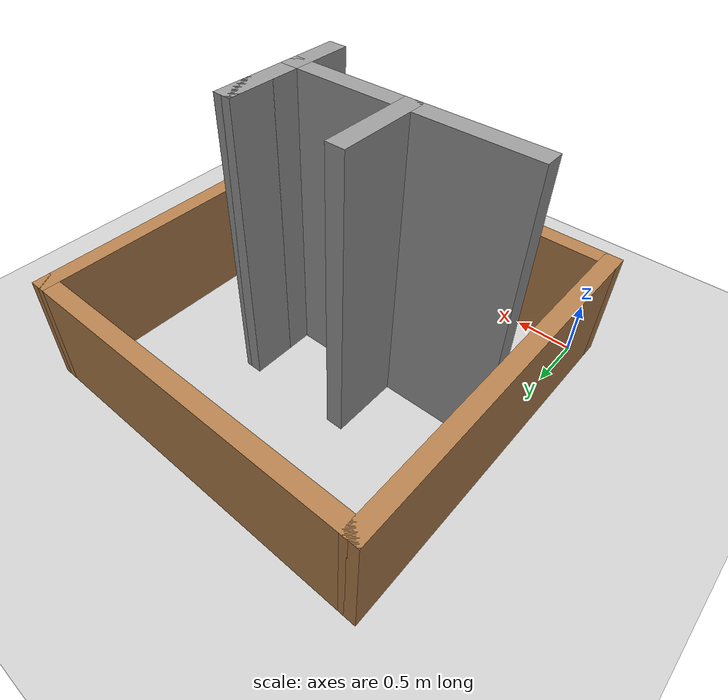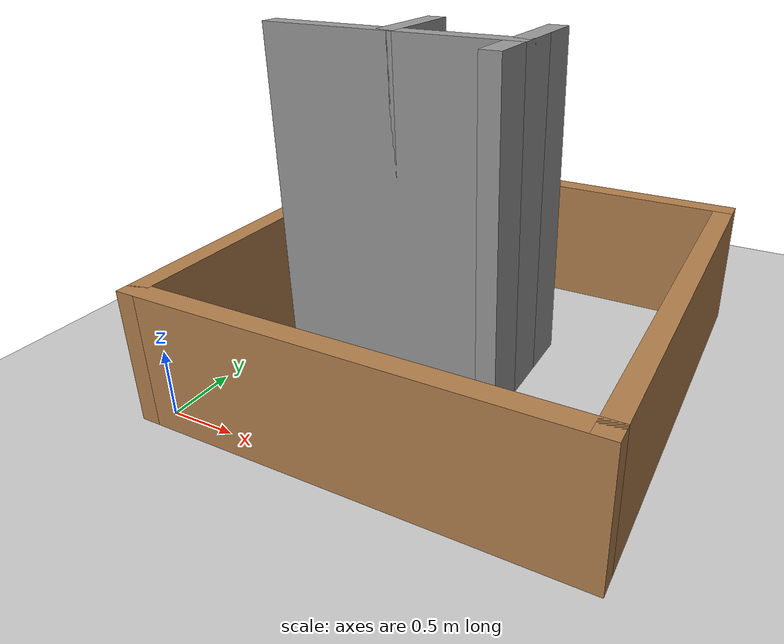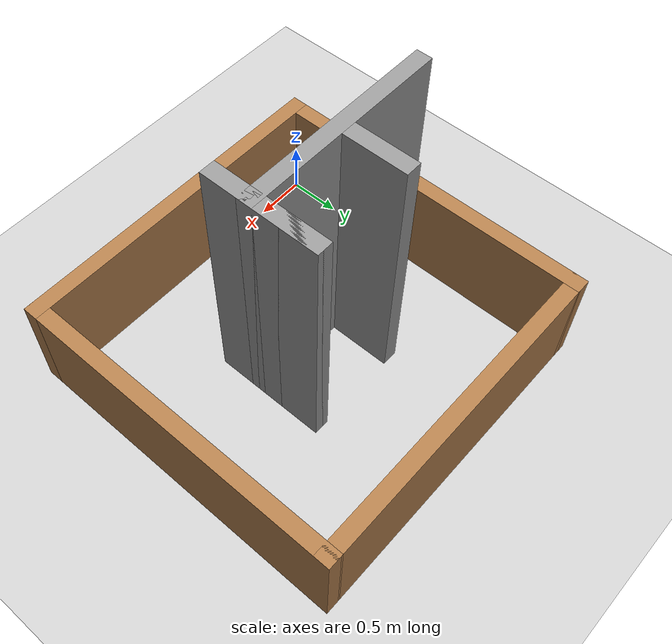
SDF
<sdf version="1.7">
 <world name="default">
  <light name="sun" type="directional">
   <pose>0 0 10 0 -0 0</pose>
   <diffuse>0.8 0.8 0.8 1</diffuse>
   <specular>0.2 0.2 0.2 1</specular>
   <attenuation>
    <range>1000</range>
    <constant>0.9</constant>
    <linear>0.01</linear>
    <quadratic>0.001</quadratic>
   </attenuation>
   <direction>-0.5 0.1 -0.9</direction>
   <spot><inner_angle>0</inner_angle><outer_angle>0</outer_angle><falloff>0</falloff></spot>
  </light>
  <model name="ground_plane">
   <static>1</static>
   <link name="link">
    <collision name="collision">
     <geometry><plane><normal>0 0 1</normal><size>100 100</size></plane></geometry>
     <surface>
      <contact><collide_bitmask>65535</collide_bitmask></contact>
      <friction><ode><mu>100</mu><mu2>50</mu2></ode></friction>
     </surface>
    </collision>
    <visual name="visual">
     <cast_shadows>0</cast_shadows>
     <geometry><plane><normal>0 0 1</normal><size>100 100</size></plane></geometry>
     <material>
      <script><uri>file://media/materials/scripts/gazebo.material</uri><name>Gazebo/Grey</name></script>
     </material>
    </visual>
   </link>
  </model>
  <gravity>0 0 -9.8</gravity>
  <magnetic_field>6e-06 2.3e-05 -4.2e-05</magnetic_field>
  <atmosphere type="adiabatic"/>
  <physics type="ode">
   <max_step_size>0.001</max_step_size>
   <real_time_factor>1</real_time_factor>
   <real_time_update_rate>1000</real_time_update_rate>
  </physics>
  <scene><ambient>0.4 0.4 0.4 1</ambient><background>0.7 0.7 0.7 1</background><shadows>1</shadows></scene>
  <spherical_coordinates>
   <surface_model>EARTH_WGS84</surface_model>
   <latitude_deg>0</latitude_deg>
   <longitude_deg>0</longitude_deg>
   <elevation>0</elevation>
   <heading_deg>0</heading_deg>
  </spherical_coordinates>
  <model name="bosOrt">
   <pose>1.5 1.5 0 0 -0 0</pose>
   <link name="Wall_0">
    <collision name="Wall_0_Collision">
     <geometry><box><size>3.3 0.15 1</size></box></geometry>
     <pose>0 0 0.5 0 -0 0</pose>
    </collision>
    <visual name="Wall_0_Visual">
     <pose>0 0 0.5 0 -0 0</pose>
     <geometry><box><size>3.3 0.15 1</size></box></geometry>
     <material>
      <script><uri>file://media/materials/scripts/gazebo.material</uri><name>Gazebo/Wood</name></script>
      <ambient>1 1 1 1</ambient>
     </material>
     <meta><layer>0</layer></meta>
    </visual>
    <pose>-0 -1.575 0 0 -0 3.14159</pose>
   </link>
   <link name="Wall_1">
    <collision name="Wall_1_Collision">
     <geometry><box><size>3.3 0.15 1</size></box></geometry>
     <pose>0 0 0.5 0 -0 0</pose>
    </collision>
    <visual name="Wall_1_Visual">
     <pose>0 0 0.5 0 -0 0</pose>
     <geometry><box><size>3.3 0.15 1</size></box></geometry>
     <material>
      <script><uri>file://media/materials/scripts/gazebo.material</uri><name>Gazebo/Wood</name></script>
      <ambient>1 1 1 1</ambient>
     </material>
     <meta><layer>0</layer></meta>
    </visual>
    <pose>-1.575 0 0 0 -0 1.5708</pose>
   </link>
   <link name="Wall_2">
    <collision name="Wall_2_Collision">
     <geometry><box><size>3.3 0.15 1</size></box></geometry>
     <pose>0 0 0.5 0 -0 0</pose>
    </collision>
    <visual name="Wall_2_Visual">
     <pose>0 0 0.5 0 -0 0</pose>
     <geometry><box><size>3.3 0.15 1</size></box></geometry>
     <material>
      <script><uri>file://media/materials/scripts/gazebo.material</uri><name>Gazebo/Wood</name></script>
      <ambient>1 1 1 1</ambient>
     </material>
     <meta><layer>0</layer></meta>
    </visual>
    <pose>-0 1.575 0 0 -0 0</pose>
   </link>
   <link name="Wall_3">
    <collision name="Wall_3_Collision">
     <geometry><box><size>3.3 0.15 1</size></box></geometry>
     <pose>0 0 0.5 0 -0 0</pose>
    </collision>
    <visual name="Wall_3_Visual">
     <pose>0 0 0.5 0 -0 0</pose>
     <geometry><box><size>3.3 0.15 1</size></box></geometry>
     <material>
      <script><uri>file://media/materials/scripts/gazebo.material</uri><name>Gazebo/Wood</name></script>
      <ambient>1 1 1 1</ambient>
     </material>
     <meta><layer>0</layer></meta>
    </visual>
    <pose>1.575 0 0 0 -0 -1.5708</pose>
   </link>
   <static>1</static>
  </model>
  <model name="plannerTest">
   <pose>1.0125 1.0225 0 0 -0 0</pose>
   <link name="Wall_0">
    <collision name="Wall_0_Collision">
     <geometry><box><size>2 0.15 2.5</size></box></geometry>
     <pose>0 0 1.25 0 -0 0</pose>
    </collision>
    <visual name="Wall_0_Visual">
     <pose>0 0 1.25 0 -0 0</pose>
     <geometry><box><size>2 0.15 2.5</size></box></geometry>
     <material>
      <script><uri>file://media/materials/scripts/gazebo.material</uri><name>Gazebo/Grey</name></script>
      <ambient>1 1 1 1</ambient>
     </material>
     <meta><layer>0</layer></meta>
    </visual>
    <pose>0.0125 0.3475 0 0 -0 0</pose>
   </link>
   <link name="Wall_2">
    <collision name="Wall_2_Collision">
     <geometry><box><size>0.75 0.15 2.5</size></box></geometry>
     <pose>0 0 1.25 0 -0 0</pose>
    </collision>
    <visual name="Wall_2_Visual">
     <pose>0 0 1.25 0 -0 0</pose>
     <geometry><box><size>0.75 0.15 2.5</size></box></geometry>
     <material>
      <script><uri>file://media/materials/scripts/gazebo.material</uri><name>Gazebo/Grey</name></script>
      <ambient>1 1 1 1</ambient>
     </material>
     <meta><layer>0</layer></meta>
    </visual>
    <pose>0.9375 0.6475 0 0 -0 1.5708</pose>
   </link>
   <link name="Wall_3">
    <collision name="Wall_3_Collision">
     <geometry><box><size>0.75 0.15 2.5</size></box></geometry>
     <pose>0 0 1.25 0 -0 0</pose>
    </collision>
    <visual name="Wall_3_Visual">
     <pose>0 0 1.25 0 -0 0</pose>
     <geometry><box><size>0.75 0.15 2.5</size></box></geometry>
     <material>
      <script><uri>file://media/materials/scripts/gazebo.material</uri><name>Gazebo/Grey</name></script>
      <ambient>1 1 1 1</ambient>
     </material>
     <meta><layer>0</layer></meta>
    </visual>
    <pose>0.9375 0.6475 0 0 -0 -1.5708</pose>
   </link>
   <link name="Wall_4">
    <collision name="Wall_4_Collision">
     <geometry><box><size>0.5 0.15 2.5</size></box></geometry>
     <pose>0 0 1.25 0 -0 0</pose>
    </collision>
    <visual name="Wall_4_Visual">
     <pose>0 0 1.25 0 -0 0</pose>
     <geometry><box><size>0.5 0.15 2.5</size></box></geometry>
     <material>
      <script><uri>file://media/materials/scripts/gazebo.material</uri><name>Gazebo/Grey</name></script>
      <ambient>1 1 1 1</ambient>
     </material>
     <meta><layer>0</layer></meta>
    </visual>
    <pose>0.9375 0.1725 0 0 -0 -1.5708</pose>
   </link>
   <link name="Wall_6">
    <collision name="Wall_6_Collision">
     <geometry><box><size>0.75 0.15 2.5</size></box></geometry>
     <pose>0 0 1.25 0 -0 0</pose>
    </collision>
    <visual name="Wall_6_Visual">
     <pose>0 0 1.25 0 -0 0</pose>
     <geometry><box><size>0.75 0.15 2.5</size></box></geometry>
     <material>
      <script><uri>file://media/materials/scripts/gazebo.material</uri><name>Gazebo/Grey</name></script>
      <ambient>1 1 1 1</ambient>
     </material>
     <meta><layer>0</layer></meta>
    </visual>
    <pose>-0.0025 0.6475 0 0 -0 -1.5708</pose>
   </link>
   <static>1</static>
  </model>
 </world>
</sdf>
